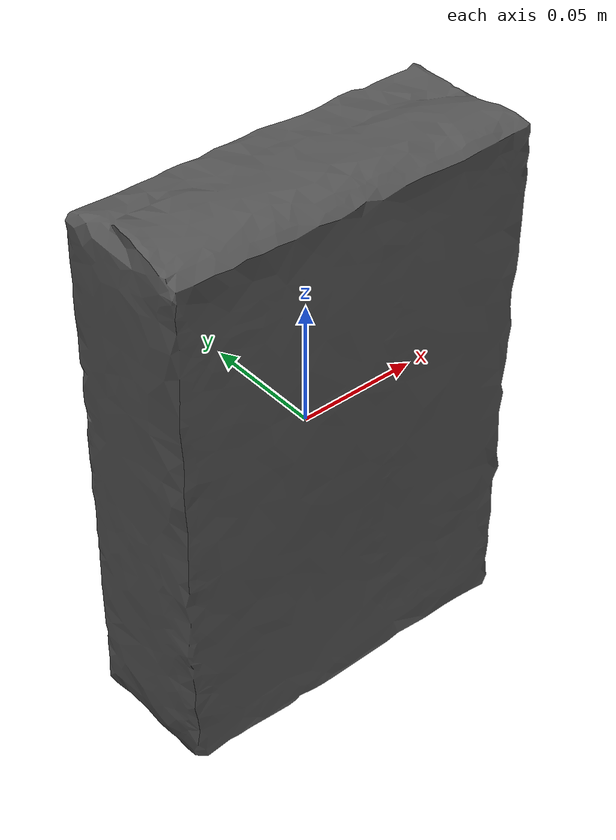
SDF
<?xml version="1.0" ?>
<sdf version="1.4">
  <model name="cheezit_big_original">
    <link name="cheezit_big_original_link">
      <inertial>
        <pose>0.0 0.0 0.0 0 0 0</pose>
        <mass>0.5</mass>
        <inertia>
          <ixx>0.0017708</ixx>
          <ixy>0.001</ixy>
          <ixz>0.001</ixz>
          <izz>0.00104</izz>
          <iyz>0.001</iyz>
          <iyy>0.02604</iyy>
        </inertia>
      </inertial>

      <visual name="cheezit_big_original_visual">
        <pose>0 0 0 0 0 0 </pose>
        <geometry>
          <mesh>
            <uri>model://cheezit_big_original/meshes/cheezit_big_original.dae</uri>
          </mesh>
        </geometry>
      </visual>

      <collision name="cheezit_big_original_collision">
        <pose>0 0 0 0 0 0</pose>
        <geometry>
          <mesh>
            <uri>model://cheezit_big_original/meshes/cheezit_big_original.dae</uri>
          </mesh>
        </geometry>
        <surface>
          <friction>
            <ode>
              <mu>0.8</mu>
              <mu2>0.8</mu2>
              <fdir1>0.0 0.0 0.0</fdir1>
              <slip1>1.0</slip1>
              <slip2>1.0</slip2>
            </ode>
          </friction>
        </surface>
      </collision>

    </link>
  </model>
</sdf>
